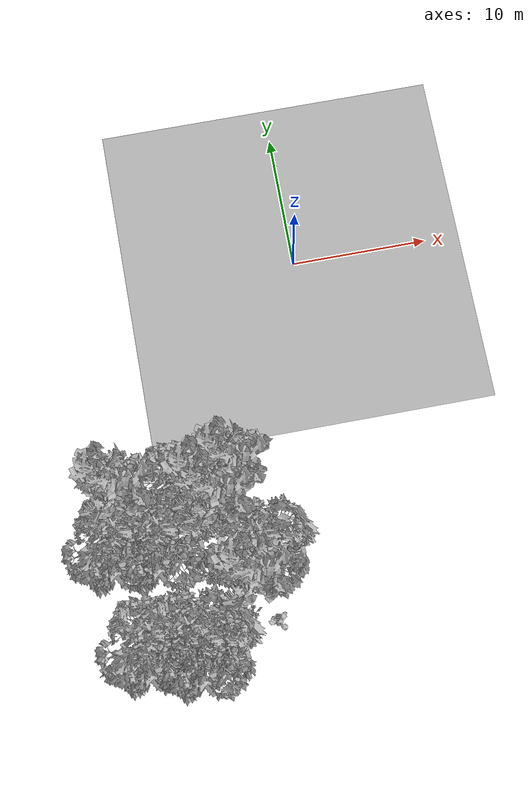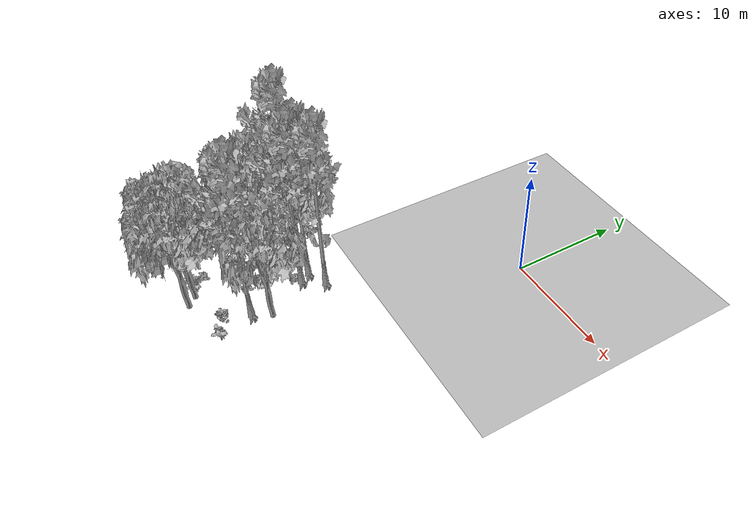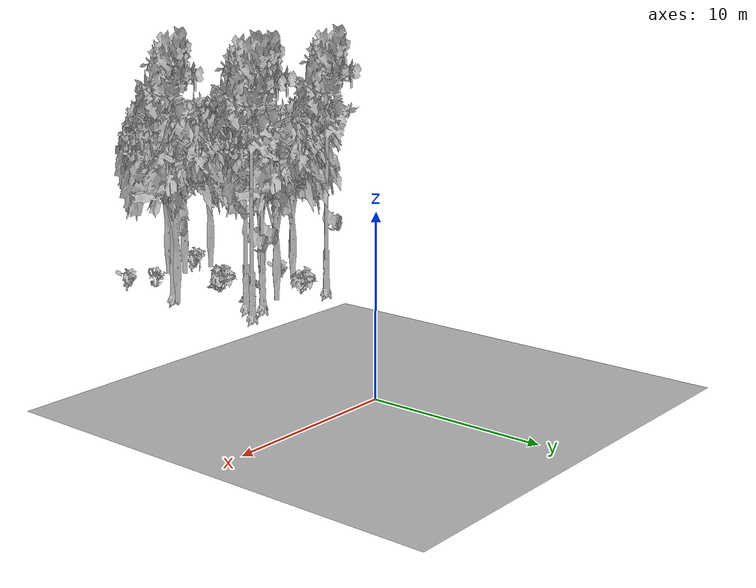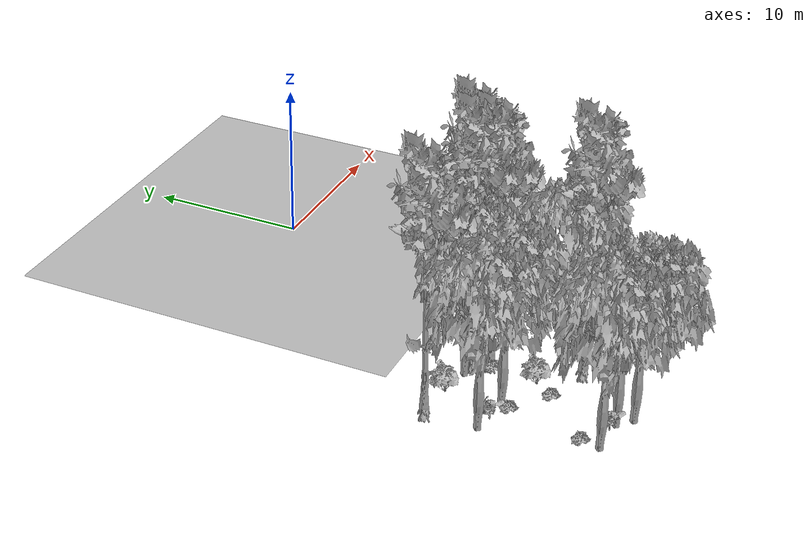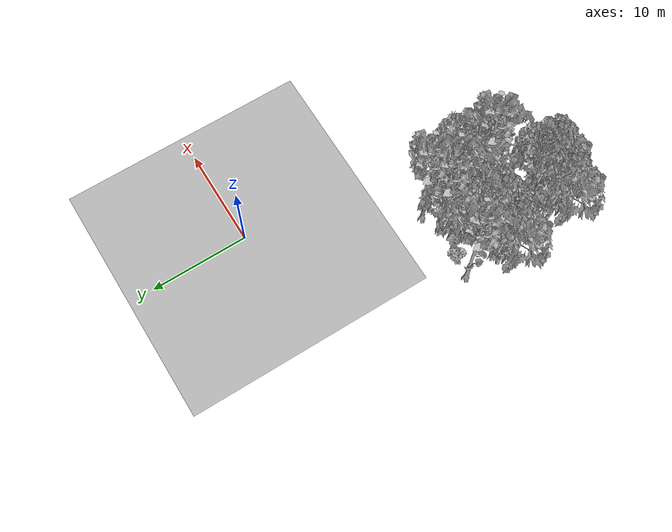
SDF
<sdf version="1.7">
 <world name="default">
  <model name="ground_plane">
   <static>1</static>
   <link name="link">
    <collision name="collision">
     <pose>-50 0 0 0 -0 0</pose>
     <geometry><plane><normal>0 0 1</normal><size>80 80</size></plane></geometry>
     <surface><contact><ode><min_depth>0.01</min_depth><max_vel>0</max_vel></ode></contact></surface>
    </collision>
    <visual name="grass">
     <cast_shadows>0</cast_shadows>
     <geometry>
      <mesh>
       <scale>0.46714285714285714 0.46714285714285714 0.1</scale>
       <uri>file://grass_plane/meshes/grass_plane.dae</uri>
      </mesh>
     </geometry>
    </visual>
   </link>
  </model>
  <model name="Tree 113">
   <static>1</static>
   <pose>-7.23240144281149 -15.68762671990762 0 1.57079 -0 0</pose>
   <link name="link">
    <collision name="collision">
     <geometry><mesh><scale>3.5 5 3.5</scale><uri>model://tree_9/meshes/tree_9.obj</uri></mesh></geometry>
    </collision>
    <visual name="visual">
     <geometry><mesh><scale>3.5 5 3.5</scale><uri>model://tree_9/meshes/tree_9.obj</uri></mesh></geometry>
    </visual>
   </link>
  </model>
  <model name="Tree 282">
   <static>1</static>
   <pose>-13.819050987553588 -25.886207616211657 0 1.57079 -0 0</pose>
   <link name="link">
    <collision name="collision">
     <geometry><mesh><scale>3.5 5 3.5</scale><uri>model://tree_2/meshes/tree_2.obj</uri></mesh></geometry>
    </collision>
    <visual name="visual">
     <geometry><mesh><scale>3.5 5 3.5</scale><uri>model://tree_2/meshes/tree_2.obj</uri></mesh></geometry>
    </visual>
   </link>
  </model>
  <model name="Tree 293">
   <static>1</static>
   <pose>-7.025109657586668 -22.60355233549152 0 1.57079 -0 0</pose>
   <link name="link">
    <collision name="collision">
     <geometry><mesh><scale>3.5 5 3.5</scale><uri>model://tree_9/meshes/tree_9.obj</uri></mesh></geometry>
    </collision>
    <visual name="visual">
     <geometry><mesh><scale>3.5 5 3.5</scale><uri>model://tree_9/meshes/tree_9.obj</uri></mesh></geometry>
    </visual>
   </link>
  </model>
  <model name="Tree 331">
   <static>1</static>
   <pose>-8.497686979854759 -17.425248479969547 0 1.57079 -0 0</pose>
   <link name="link">
    <collision name="collision">
     <geometry><mesh><scale>3.5 5 3.5</scale><uri>model://tree_9/meshes/tree_9.obj</uri></mesh></geometry>
    </collision>
    <visual name="visual">
     <geometry><mesh><scale>3.5 5 3.5</scale><uri>model://tree_9/meshes/tree_9.obj</uri></mesh></geometry>
    </visual>
   </link>
  </model>
  <model name="Tree 404">
   <static>1</static>
   <pose>-14.525574264463305 -15.857630705983805 0 1.57079 -0 0</pose>
   <link name="link">
    <collision name="collision">
     <geometry><mesh><scale>3.5 5 3.5</scale><uri>model://tree_9/meshes/tree_9.obj</uri></mesh></geometry>
    </collision>
    <visual name="visual">
     <geometry><mesh><scale>3.5 5 3.5</scale><uri>model://tree_9/meshes/tree_9.obj</uri></mesh></geometry>
    </visual>
   </link>
  </model>
  <model name="Tree 445">
   <static>1</static>
   <pose>-10.562059177351742 -16.605622426723563 0 1.57079 -0 0</pose>
   <link name="link">
    <collision name="collision">
     <geometry><mesh><scale>3.5 5 3.5</scale><uri>model://tree_2/meshes/tree_2.obj</uri></mesh></geometry>
    </collision>
    <visual name="visual">
     <geometry><mesh><scale>3.5 5 3.5</scale><uri>model://tree_2/meshes/tree_2.obj</uri></mesh></geometry>
    </visual>
   </link>
  </model>
  <model name="Tree 461">
   <static>1</static>
   <pose>-11.427013187891308 -26.01119179700678 0 1.57079 -0 0</pose>
   <link name="link">
    <collision name="collision">
     <geometry><mesh><scale>3.5 5 3.5</scale><uri>model://tree_2/meshes/tree_2.obj</uri></mesh></geometry>
    </collision>
    <visual name="visual">
     <geometry><mesh><scale>3.5 5 3.5</scale><uri>model://tree_2/meshes/tree_2.obj</uri></mesh></geometry>
    </visual>
   </link>
  </model>
  <model name="Tree 481">
   <static>1</static>
   <pose>-15.0205248562571 -19.241452842601205 0 1.57079 -0 0</pose>
   <link name="link">
    <collision name="collision">
     <geometry><mesh><scale>3.5 5 3.5</scale><uri>model://tree_2/meshes/tree_2.obj</uri></mesh></geometry>
    </collision>
    <visual name="visual">
     <geometry><mesh><scale>3.5 5 3.5</scale><uri>model://tree_2/meshes/tree_2.obj</uri></mesh></geometry>
    </visual>
   </link>
  </model>
  <model name="Tree 485">
   <static>1</static>
   <pose>-10.630501363234018 -26.796772685776205 0 1.57079 -0 0</pose>
   <link name="link">
    <collision name="collision">
     <geometry><mesh><scale>3.5 5 3.5</scale><uri>model://tree_2/meshes/tree_2.obj</uri></mesh></geometry>
    </collision>
    <visual name="visual">
     <geometry><mesh><scale>3.5 5 3.5</scale><uri>model://tree_2/meshes/tree_2.obj</uri></mesh></geometry>
    </visual>
   </link>
  </model>
  <model name="Tree 564">
   <static>1</static>
   <pose>-12.336181853014306 -19.594439922470414 0 1.57079 -0 0</pose>
   <link name="link">
    <collision name="collision">
     <geometry><mesh><scale>3.5 5 3.5</scale><uri>model://tree_2/meshes/tree_2.obj</uri></mesh></geometry>
    </collision>
    <visual name="visual">
     <geometry><mesh><scale>3.5 5 3.5</scale><uri>model://tree_2/meshes/tree_2.obj</uri></mesh></geometry>
    </visual>
   </link>
  </model>
  <model name="Tree 607">
   <static>1</static>
   <pose>-9.05438672964629 -16.5126104205573 0 1.57079 -0 0</pose>
   <link name="link">
    <collision name="collision">
     <geometry><mesh><scale>3.5 5 3.5</scale><uri>model://tree_9/meshes/tree_9.obj</uri></mesh></geometry>
    </collision>
    <visual name="visual">
     <geometry><mesh><scale>3.5 5 3.5</scale><uri>model://tree_9/meshes/tree_9.obj</uri></mesh></geometry>
    </visual>
   </link>
  </model>
  <model name="Tree 609">
   <static>1</static>
   <pose>-6.091674826262718 -21.12723306125961 0 1.57079 -0 0</pose>
   <link name="link">
    <collision name="collision">
     <geometry><mesh><scale>3.5 5 3.5</scale><uri>model://tree_2/meshes/tree_2.obj</uri></mesh></geometry>
    </collision>
    <visual name="visual">
     <geometry><mesh><scale>3.5 5 3.5</scale><uri>model://tree_2/meshes/tree_2.obj</uri></mesh></geometry>
    </visual>
   </link>
  </model>
  <model name="Bush 24">
   <static>1</static>
   <pose>-13.723829460040864 -19.464683567769 0 1.57079 -0 0</pose>
   <link name="link">
    <collision name="collision">
     <geometry><mesh><scale>2 2 2</scale><uri>model://bush_0/meshes/bush_0.obj</uri></mesh></geometry>
     <surface><contact><collide_without_contact>false</collide_without_contact></contact></surface>
    </collision>
    <visual name="visual">
     <geometry><mesh><scale>2 2 2</scale><uri>model://bush_0/meshes/bush_0.obj</uri></mesh></geometry>
    </visual>
   </link>
  </model>
  <model name="Bush 124">
   <static>1</static>
   <pose>-11.81102282687577 -25.79125903825713 0 1.57079 -0 0</pose>
   <link name="link">
    <collision name="collision">
     <geometry><mesh><scale>2 2 2</scale><uri>model://bush_0/meshes/bush_0.obj</uri></mesh></geometry>
     <surface><contact><collide_without_contact>false</collide_without_contact></contact></surface>
    </collision>
    <visual name="visual">
     <geometry><mesh><scale>2 2 2</scale><uri>model://bush_0/meshes/bush_0.obj</uri></mesh></geometry>
    </visual>
   </link>
  </model>
  <model name="Bush 141">
   <static>1</static>
   <pose>-5.713135064697383 -25.637467496951267 0 1.57079 -0 0</pose>
   <link name="link">
    <collision name="collision">
     <geometry><mesh><scale>2 2 2</scale><uri>model://bush_0/meshes/bush_0.obj</uri></mesh></geometry>
     <surface><contact><collide_without_contact>false</collide_without_contact></contact></surface>
    </collision>
    <visual name="visual">
     <geometry><mesh><scale>2 2 2</scale><uri>model://bush_0/meshes/bush_0.obj</uri></mesh></geometry>
    </visual>
   </link>
  </model>
  <model name="Bush 181">
   <static>1</static>
   <pose>-12.39804479546822 -20.106111053061237 0 1.57079 -0 0</pose>
   <link name="link">
    <collision name="collision">
     <geometry><mesh><scale>2 2 2</scale><uri>model://bush_2/meshes/bush_2.obj</uri></mesh></geometry>
     <surface><contact><collide_without_contact>false</collide_without_contact></contact></surface>
    </collision>
    <visual name="visual">
     <geometry><mesh><scale>2 2 2</scale><uri>model://bush_2/meshes/bush_2.obj</uri></mesh></geometry>
    </visual>
   </link>
  </model>
  <model name="Bush 253">
   <static>1</static>
   <pose>-12.32592940543141 -25.5923133163838 0 1.57079 -0 0</pose>
   <link name="link">
    <collision name="collision">
     <geometry><mesh><scale>2 2 2</scale><uri>model://bush_5/meshes/bush_5.obj</uri></mesh></geometry>
     <surface><contact><collide_without_contact>false</collide_without_contact></contact></surface>
    </collision>
    <visual name="visual">
     <geometry><mesh><scale>2 2 2</scale><uri>model://bush_5/meshes/bush_5.obj</uri></mesh></geometry>
    </visual>
   </link>
  </model>
  <model name="Bush 281">
   <static>1</static>
   <pose>-13.397264442006755 -24.687537549952914 0 1.57079 -0 0</pose>
   <link name="link">
    <collision name="collision">
     <geometry><mesh><scale>2 2 2</scale><uri>model://bush_2/meshes/bush_2.obj</uri></mesh></geometry>
     <surface><contact><collide_without_contact>false</collide_without_contact></contact></surface>
    </collision>
    <visual name="visual">
     <geometry><mesh><scale>2 2 2</scale><uri>model://bush_2/meshes/bush_2.obj</uri></mesh></geometry>
    </visual>
   </link>
  </model>
  <model name="Bush 290">
   <static>1</static>
   <pose>-10.244199899210876 -21.825474573174233 0 1.57079 -0 0</pose>
   <link name="link">
    <collision name="collision">
     <geometry><mesh><scale>2 2 2</scale><uri>model://bush_2/meshes/bush_2.obj</uri></mesh></geometry>
     <surface><contact><collide_without_contact>false</collide_without_contact></contact></surface>
    </collision>
    <visual name="visual">
     <geometry><mesh><scale>2 2 2</scale><uri>model://bush_2/meshes/bush_2.obj</uri></mesh></geometry>
    </visual>
   </link>
  </model>
  <model name="Bush 310">
   <static>1</static>
   <pose>-12.431955435115817 -16.242651591450922 0 1.57079 -0 0</pose>
   <link name="link">
    <collision name="collision">
     <geometry><mesh><scale>2 2 2</scale><uri>model://bush_1/meshes/bush_1.obj</uri></mesh></geometry>
     <surface><contact><collide_without_contact>false</collide_without_contact></contact></surface>
    </collision>
    <visual name="visual">
     <geometry><mesh><scale>2 2 2</scale><uri>model://bush_1/meshes/bush_1.obj</uri></mesh></geometry>
    </visual>
   </link>
  </model>
  <model name="Bush 319">
   <static>1</static>
   <pose>-9.096959263415783 -17.848239107034782 0 1.57079 -0 0</pose>
   <link name="link">
    <collision name="collision">
     <geometry><mesh><scale>2 2 2</scale><uri>model://bush_2/meshes/bush_2.obj</uri></mesh></geometry>
     <surface><contact><collide_without_contact>false</collide_without_contact></contact></surface>
    </collision>
    <visual name="visual">
     <geometry><mesh><scale>2 2 2</scale><uri>model://bush_2/meshes/bush_2.obj</uri></mesh></geometry>
    </visual>
   </link>
  </model>
  <model name="Bush 350">
   <static>1</static>
   <pose>-9.464521522409449 -20.669830284477513 0 1.57079 -0 0</pose>
   <link name="link">
    <collision name="collision">
     <geometry><mesh><scale>2 2 2</scale><uri>model://bush_1/meshes/bush_1.obj</uri></mesh></geometry>
     <surface><contact><collide_without_contact>false</collide_without_contact></contact></surface>
    </collision>
    <visual name="visual">
     <geometry><mesh><scale>2 2 2</scale><uri>model://bush_1/meshes/bush_1.obj</uri></mesh></geometry>
    </visual>
   </link>
  </model>
  <model name="Bush 569">
   <static>1</static>
   <pose>-7.625135024555004 -24.907391249808335 0 1.57079 -0 0</pose>
   <link name="link">
    <collision name="collision">
     <geometry><mesh><scale>2 2 2</scale><uri>model://bush_4/meshes/bush_4.obj</uri></mesh></geometry>
     <surface><contact><collide_without_contact>false</collide_without_contact></contact></surface>
    </collision>
    <visual name="visual">
     <geometry><mesh><scale>2 2 2</scale><uri>model://bush_4/meshes/bush_4.obj</uri></mesh></geometry>
    </visual>
   </link>
  </model>
 </world>
</sdf>
